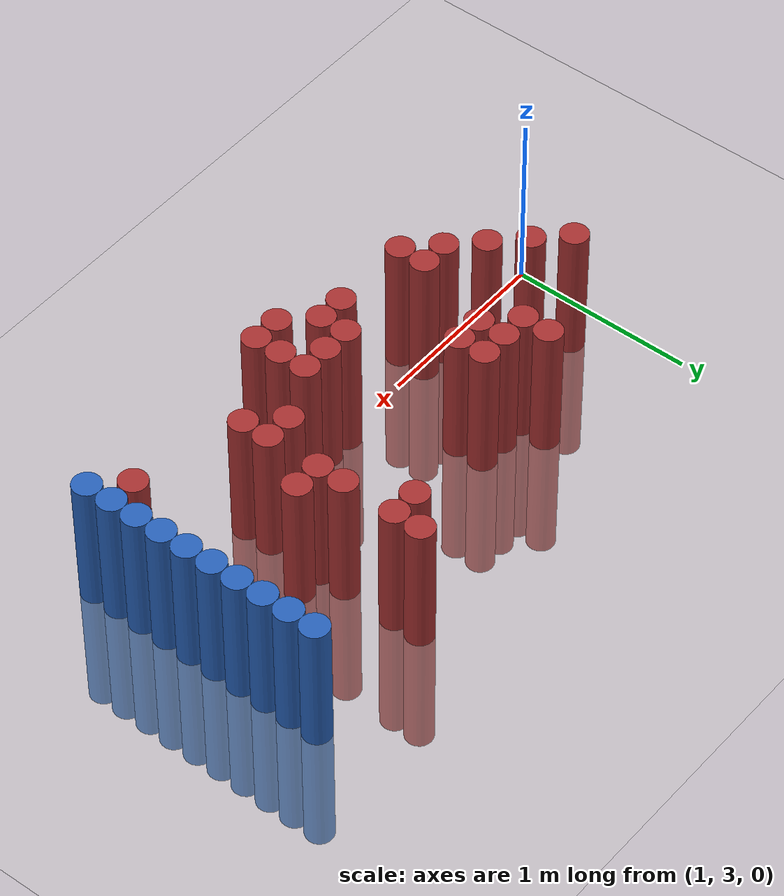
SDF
<sdf version="1.6">
 <world name="default">
  <model name="ground_plane">
   <static>1</static>
   <link name="link">
    <collision name="collision">
     <geometry><plane><normal>0 0 1</normal><size>100 100</size></plane></geometry>
     <surface><friction><ode><mu>100</mu><mu2>50</mu2></ode></friction></surface>
    </collision>
    <visual name="visual">
     <cast_shadows>0</cast_shadows>
     <geometry><plane><normal>0 0 1</normal><size>100 100</size></plane></geometry>
     <material>
      <script><uri>file://media/materials/scripts/gazebo.material</uri><name>Gazebo/Grey</name></script>
     </material>
    </visual>
   </link>
  </model>
  <model name="unit_cylinder_150">
   <static>1</static>
   <pose>3.925000 2.725000 0.000000 0.000000 0.000000 0.000000</pose>
   <link name="link">
    <inertial>
     <mass>1</mass>
     <inertia><ixx>0.145833</ixx><ixy>0</ixy><ixz>0</ixz><iyy>0.145833</iyy><iyz>0</iyz><izz>0.125</izz></inertia>
    </inertial>
    <collision name="collision">
     <geometry><cylinder><radius>0.075000</radius><length>1.5</length></cylinder></geometry>
    </collision>
    <visual name="visual">
     <geometry><cylinder><radius>0.075000</radius><length>1.5</length></cylinder></geometry>
     <material>
      <ambient>0.152000 0.379000 0.720000 1</ambient>
      <diffuse>0.152000 0.379000 0.720000 1</diffuse>
     </material>
     <material>
      <script><name>Gazebo/Grey</name><uri>file://media/materials/scripts/gazebo.material</uri></script>
     </material>
    </visual>
   </link>
  </model>
  <model name="unit_cylinder_152">
   <static>1</static>
   <pose>3.925000 2.875000 0.000000 0.000000 0.000000 0.000000</pose>
   <link name="link">
    <inertial>
     <mass>1</mass>
     <inertia><ixx>0.145833</ixx><ixy>0</ixy><ixz>0</ixz><iyy>0.145833</iyy><iyz>0</iyz><izz>0.125</izz></inertia>
    </inertial>
    <collision name="collision">
     <geometry><cylinder><radius>0.075000</radius><length>1.5</length></cylinder></geometry>
    </collision>
    <visual name="visual">
     <geometry><cylinder><radius>0.075000</radius><length>1.5</length></cylinder></geometry>
     <material>
      <ambient>0.152000 0.379000 0.720000 1</ambient>
      <diffuse>0.152000 0.379000 0.720000 1</diffuse>
     </material>
     <material>
      <script><name>Gazebo/Grey</name><uri>file://media/materials/scripts/gazebo.material</uri></script>
     </material>
    </visual>
   </link>
  </model>
  <model name="unit_cylinder_154">
   <static>1</static>
   <pose>3.925000 3.025000 0.000000 0.000000 0.000000 0.000000</pose>
   <link name="link">
    <inertial>
     <mass>1</mass>
     <inertia><ixx>0.145833</ixx><ixy>0</ixy><ixz>0</ixz><iyy>0.145833</iyy><iyz>0</iyz><izz>0.125</izz></inertia>
    </inertial>
    <collision name="collision">
     <geometry><cylinder><radius>0.075000</radius><length>1.5</length></cylinder></geometry>
    </collision>
    <visual name="visual">
     <geometry><cylinder><radius>0.075000</radius><length>1.5</length></cylinder></geometry>
     <material>
      <ambient>0.152000 0.379000 0.720000 1</ambient>
      <diffuse>0.152000 0.379000 0.720000 1</diffuse>
     </material>
     <material>
      <script><name>Gazebo/Grey</name><uri>file://media/materials/scripts/gazebo.material</uri></script>
     </material>
    </visual>
   </link>
  </model>
  <model name="unit_cylinder_156">
   <static>1</static>
   <pose>3.925000 3.175000 0.000000 0.000000 0.000000 0.000000</pose>
   <link name="link">
    <inertial>
     <mass>1</mass>
     <inertia><ixx>0.145833</ixx><ixy>0</ixy><ixz>0</ixz><iyy>0.145833</iyy><iyz>0</iyz><izz>0.125</izz></inertia>
    </inertial>
    <collision name="collision">
     <geometry><cylinder><radius>0.075000</radius><length>1.5</length></cylinder></geometry>
    </collision>
    <visual name="visual">
     <geometry><cylinder><radius>0.075000</radius><length>1.5</length></cylinder></geometry>
     <material>
      <ambient>0.152000 0.379000 0.720000 1</ambient>
      <diffuse>0.152000 0.379000 0.720000 1</diffuse>
     </material>
     <material>
      <script><name>Gazebo/Grey</name><uri>file://media/materials/scripts/gazebo.material</uri></script>
     </material>
    </visual>
   </link>
  </model>
  <model name="unit_cylinder_158">
   <static>1</static>
   <pose>3.925000 3.325000 0.000000 0.000000 0.000000 0.000000</pose>
   <link name="link">
    <inertial>
     <mass>1</mass>
     <inertia><ixx>0.145833</ixx><ixy>0</ixy><ixz>0</ixz><iyy>0.145833</iyy><iyz>0</iyz><izz>0.125</izz></inertia>
    </inertial>
    <collision name="collision">
     <geometry><cylinder><radius>0.075000</radius><length>1.5</length></cylinder></geometry>
    </collision>
    <visual name="visual">
     <geometry><cylinder><radius>0.075000</radius><length>1.5</length></cylinder></geometry>
     <material>
      <ambient>0.152000 0.379000 0.720000 1</ambient>
      <diffuse>0.152000 0.379000 0.720000 1</diffuse>
     </material>
     <material>
      <script><name>Gazebo/Grey</name><uri>file://media/materials/scripts/gazebo.material</uri></script>
     </material>
    </visual>
   </link>
  </model>
  <model name="unit_cylinder_160">
   <static>1</static>
   <pose>3.925000 3.475000 0.000000 0.000000 0.000000 0.000000</pose>
   <link name="link">
    <inertial>
     <mass>1</mass>
     <inertia><ixx>0.145833</ixx><ixy>0</ixy><ixz>0</ixz><iyy>0.145833</iyy><iyz>0</iyz><izz>0.125</izz></inertia>
    </inertial>
    <collision name="collision">
     <geometry><cylinder><radius>0.075000</radius><length>1.5</length></cylinder></geometry>
    </collision>
    <visual name="visual">
     <geometry><cylinder><radius>0.075000</radius><length>1.5</length></cylinder></geometry>
     <material>
      <ambient>0.152000 0.379000 0.720000 1</ambient>
      <diffuse>0.152000 0.379000 0.720000 1</diffuse>
     </material>
     <material>
      <script><name>Gazebo/Grey</name><uri>file://media/materials/scripts/gazebo.material</uri></script>
     </material>
    </visual>
   </link>
  </model>
  <model name="unit_cylinder_162">
   <static>1</static>
   <pose>3.925000 3.625000 0.000000 0.000000 0.000000 0.000000</pose>
   <link name="link">
    <inertial>
     <mass>1</mass>
     <inertia><ixx>0.145833</ixx><ixy>0</ixy><ixz>0</ixz><iyy>0.145833</iyy><iyz>0</iyz><izz>0.125</izz></inertia>
    </inertial>
    <collision name="collision">
     <geometry><cylinder><radius>0.075000</radius><length>1.5</length></cylinder></geometry>
    </collision>
    <visual name="visual">
     <geometry><cylinder><radius>0.075000</radius><length>1.5</length></cylinder></geometry>
     <material>
      <ambient>0.152000 0.379000 0.720000 1</ambient>
      <diffuse>0.152000 0.379000 0.720000 1</diffuse>
     </material>
     <material>
      <script><name>Gazebo/Grey</name><uri>file://media/materials/scripts/gazebo.material</uri></script>
     </material>
    </visual>
   </link>
  </model>
  <model name="unit_cylinder_164">
   <static>1</static>
   <pose>3.925000 3.775000 0.000000 0.000000 0.000000 0.000000</pose>
   <link name="link">
    <inertial>
     <mass>1</mass>
     <inertia><ixx>0.145833</ixx><ixy>0</ixy><ixz>0</ixz><iyy>0.145833</iyy><iyz>0</iyz><izz>0.125</izz></inertia>
    </inertial>
    <collision name="collision">
     <geometry><cylinder><radius>0.075000</radius><length>1.5</length></cylinder></geometry>
    </collision>
    <visual name="visual">
     <geometry><cylinder><radius>0.075000</radius><length>1.5</length></cylinder></geometry>
     <material>
      <ambient>0.152000 0.379000 0.720000 1</ambient>
      <diffuse>0.152000 0.379000 0.720000 1</diffuse>
     </material>
     <material>
      <script><name>Gazebo/Grey</name><uri>file://media/materials/scripts/gazebo.material</uri></script>
     </material>
    </visual>
   </link>
  </model>
  <model name="unit_cylinder_166">
   <static>1</static>
   <pose>3.925000 3.925000 0.000000 0.000000 0.000000 0.000000</pose>
   <link name="link">
    <inertial>
     <mass>1</mass>
     <inertia><ixx>0.145833</ixx><ixy>0</ixy><ixz>0</ixz><iyy>0.145833</iyy><iyz>0</iyz><izz>0.125</izz></inertia>
    </inertial>
    <collision name="collision">
     <geometry><cylinder><radius>0.075000</radius><length>1.5</length></cylinder></geometry>
    </collision>
    <visual name="visual">
     <geometry><cylinder><radius>0.075000</radius><length>1.5</length></cylinder></geometry>
     <material>
      <ambient>0.152000 0.379000 0.720000 1</ambient>
      <diffuse>0.152000 0.379000 0.720000 1</diffuse>
     </material>
     <material>
      <script><name>Gazebo/Grey</name><uri>file://media/materials/scripts/gazebo.material</uri></script>
     </material>
    </visual>
   </link>
  </model>
  <model name="unit_cylinder_168">
   <static>1</static>
   <pose>3.925000 4.075000 0.000000 0.000000 0.000000 0.000000</pose>
   <link name="link">
    <inertial>
     <mass>1</mass>
     <inertia><ixx>0.145833</ixx><ixy>0</ixy><ixz>0</ixz><iyy>0.145833</iyy><iyz>0</iyz><izz>0.125</izz></inertia>
    </inertial>
    <collision name="collision">
     <geometry><cylinder><radius>0.075000</radius><length>1.5</length></cylinder></geometry>
    </collision>
    <visual name="visual">
     <geometry><cylinder><radius>0.075000</radius><length>1.5</length></cylinder></geometry>
     <material>
      <ambient>0.152000 0.379000 0.720000 1</ambient>
      <diffuse>0.152000 0.379000 0.720000 1</diffuse>
     </material>
     <material>
      <script><name>Gazebo/Grey</name><uri>file://media/materials/scripts/gazebo.material</uri></script>
     </material>
    </visual>
   </link>
  </model>
  <model name="unit_cylinder_388">
   <static>1</static>
   <pose>1.225000 3.475000 0.000000 0.000000 0.000000 0.000000</pose>
   <link name="link">
    <inertial>
     <mass>1</mass>
     <inertia><ixx>0.145833</ixx><ixy>0</ixy><ixz>0</ixz><iyy>0.145833</iyy><iyz>0</iyz><izz>0.125</izz></inertia>
    </inertial>
    <collision name="collision">
     <geometry><cylinder><radius>0.075000</radius><length>1.5</length></cylinder></geometry>
    </collision>
    <visual name="visual">
     <geometry><cylinder><radius>0.075000</radius><length>1.5</length></cylinder></geometry>
     <material>
      <ambient>0.648000 0.192000 0.192000 1</ambient>
      <diffuse>0.648000 0.192000 0.192000 1</diffuse>
     </material>
     <material>
      <script><name>Gazebo/Grey</name><uri>file://media/materials/scripts/gazebo.material</uri></script>
     </material>
    </visual>
   </link>
  </model>
  <model name="unit_cylinder_395">
   <static>1</static>
   <pose>1.375000 3.325000 0.000000 0.000000 0.000000 0.000000</pose>
   <link name="link">
    <inertial>
     <mass>1</mass>
     <inertia><ixx>0.145833</ixx><ixy>0</ixy><ixz>0</ixz><iyy>0.145833</iyy><iyz>0</iyz><izz>0.125</izz></inertia>
    </inertial>
    <collision name="collision">
     <geometry><cylinder><radius>0.075000</radius><length>1.5</length></cylinder></geometry>
    </collision>
    <visual name="visual">
     <geometry><cylinder><radius>0.075000</radius><length>1.5</length></cylinder></geometry>
     <material>
      <ambient>0.648000 0.192000 0.192000 1</ambient>
      <diffuse>0.648000 0.192000 0.192000 1</diffuse>
     </material>
     <material>
      <script><name>Gazebo/Grey</name><uri>file://media/materials/scripts/gazebo.material</uri></script>
     </material>
    </visual>
   </link>
  </model>
  <model name="unit_cylinder_400">
   <static>1</static>
   <pose>1.525000 3.175000 0.000000 0.000000 0.000000 0.000000</pose>
   <link name="link">
    <inertial>
     <mass>1</mass>
     <inertia><ixx>0.145833</ixx><ixy>0</ixy><ixz>0</ixz><iyy>0.145833</iyy><iyz>0</iyz><izz>0.125</izz></inertia>
    </inertial>
    <collision name="collision">
     <geometry><cylinder><radius>0.075000</radius><length>1.5</length></cylinder></geometry>
    </collision>
    <visual name="visual">
     <geometry><cylinder><radius>0.075000</radius><length>1.5</length></cylinder></geometry>
     <material>
      <ambient>0.648000 0.192000 0.192000 1</ambient>
      <diffuse>0.648000 0.192000 0.192000 1</diffuse>
     </material>
     <material>
      <script><name>Gazebo/Grey</name><uri>file://media/materials/scripts/gazebo.material</uri></script>
     </material>
    </visual>
   </link>
  </model>
  <model name="unit_cylinder_406">
   <static>1</static>
   <pose>1.675000 3.025000 0.000000 0.000000 0.000000 0.000000</pose>
   <link name="link">
    <inertial>
     <mass>1</mass>
     <inertia><ixx>0.145833</ixx><ixy>0</ixy><ixz>0</ixz><iyy>0.145833</iyy><iyz>0</iyz><izz>0.125</izz></inertia>
    </inertial>
    <collision name="collision">
     <geometry><cylinder><radius>0.075000</radius><length>1.5</length></cylinder></geometry>
    </collision>
    <visual name="visual">
     <geometry><cylinder><radius>0.075000</radius><length>1.5</length></cylinder></geometry>
     <material>
      <ambient>0.648000 0.192000 0.192000 1</ambient>
      <diffuse>0.648000 0.192000 0.192000 1</diffuse>
     </material>
     <material>
      <script><name>Gazebo/Grey</name><uri>file://media/materials/scripts/gazebo.material</uri></script>
     </material>
    </visual>
   </link>
  </model>
  <model name="unit_cylinder_410">
   <static>1</static>
   <pose>1.825000 2.875000 0.000000 0.000000 0.000000 0.000000</pose>
   <link name="link">
    <inertial>
     <mass>1</mass>
     <inertia><ixx>0.145833</ixx><ixy>0</ixy><ixz>0</ixz><iyy>0.145833</iyy><iyz>0</iyz><izz>0.125</izz></inertia>
    </inertial>
    <collision name="collision">
     <geometry><cylinder><radius>0.075000</radius><length>1.5</length></cylinder></geometry>
    </collision>
    <visual name="visual">
     <geometry><cylinder><radius>0.075000</radius><length>1.5</length></cylinder></geometry>
     <material>
      <ambient>0.648000 0.192000 0.192000 1</ambient>
      <diffuse>0.648000 0.192000 0.192000 1</diffuse>
     </material>
     <material>
      <script><name>Gazebo/Grey</name><uri>file://media/materials/scripts/gazebo.material</uri></script>
     </material>
    </visual>
   </link>
  </model>
  <model name="unit_cylinder_411">
   <static>1</static>
   <pose>1.825000 3.025000 0.000000 0.000000 0.000000 0.000000</pose>
   <link name="link">
    <inertial>
     <mass>1</mass>
     <inertia><ixx>0.145833</ixx><ixy>0</ixy><ixz>0</ixz><iyy>0.145833</iyy><iyz>0</iyz><izz>0.125</izz></inertia>
    </inertial>
    <collision name="collision">
     <geometry><cylinder><radius>0.075000</radius><length>1.5</length></cylinder></geometry>
    </collision>
    <visual name="visual">
     <geometry><cylinder><radius>0.075000</radius><length>1.5</length></cylinder></geometry>
     <material>
      <ambient>0.648000 0.192000 0.192000 1</ambient>
      <diffuse>0.648000 0.192000 0.192000 1</diffuse>
     </material>
     <material>
      <script><name>Gazebo/Grey</name><uri>file://media/materials/scripts/gazebo.material</uri></script>
     </material>
    </visual>
   </link>
  </model>
  <model name="unit_cylinder_412">
   <static>1</static>
   <pose>1.825000 3.625000 0.000000 0.000000 0.000000 0.000000</pose>
   <link name="link">
    <inertial>
     <mass>1</mass>
     <inertia><ixx>0.145833</ixx><ixy>0</ixy><ixz>0</ixz><iyy>0.145833</iyy><iyz>0</iyz><izz>0.125</izz></inertia>
    </inertial>
    <collision name="collision">
     <geometry><cylinder><radius>0.075000</radius><length>1.5</length></cylinder></geometry>
    </collision>
    <visual name="visual">
     <geometry><cylinder><radius>0.075000</radius><length>1.5</length></cylinder></geometry>
     <material>
      <ambient>0.648000 0.192000 0.192000 1</ambient>
      <diffuse>0.648000 0.192000 0.192000 1</diffuse>
     </material>
     <material>
      <script><name>Gazebo/Grey</name><uri>file://media/materials/scripts/gazebo.material</uri></script>
     </material>
    </visual>
   </link>
  </model>
  <model name="unit_cylinder_413">
   <static>1</static>
   <pose>1.825000 3.775000 0.000000 0.000000 0.000000 0.000000</pose>
   <link name="link">
    <inertial>
     <mass>1</mass>
     <inertia><ixx>0.145833</ixx><ixy>0</ixy><ixz>0</ixz><iyy>0.145833</iyy><iyz>0</iyz><izz>0.125</izz></inertia>
    </inertial>
    <collision name="collision">
     <geometry><cylinder><radius>0.075000</radius><length>1.5</length></cylinder></geometry>
    </collision>
    <visual name="visual">
     <geometry><cylinder><radius>0.075000</radius><length>1.5</length></cylinder></geometry>
     <material>
      <ambient>0.648000 0.192000 0.192000 1</ambient>
      <diffuse>0.648000 0.192000 0.192000 1</diffuse>
     </material>
     <material>
      <script><name>Gazebo/Grey</name><uri>file://media/materials/scripts/gazebo.material</uri></script>
     </material>
    </visual>
   </link>
  </model>
  <model name="unit_cylinder_414">
   <static>1</static>
   <pose>1.975000 3.475000 0.000000 0.000000 0.000000 0.000000</pose>
   <link name="link">
    <inertial>
     <mass>1</mass>
     <inertia><ixx>0.145833</ixx><ixy>0</ixy><ixz>0</ixz><iyy>0.145833</iyy><iyz>0</iyz><izz>0.125</izz></inertia>
    </inertial>
    <collision name="collision">
     <geometry><cylinder><radius>0.075000</radius><length>1.5</length></cylinder></geometry>
    </collision>
    <visual name="visual">
     <geometry><cylinder><radius>0.075000</radius><length>1.5</length></cylinder></geometry>
     <material>
      <ambient>0.648000 0.192000 0.192000 1</ambient>
      <diffuse>0.648000 0.192000 0.192000 1</diffuse>
     </material>
     <material>
      <script><name>Gazebo/Grey</name><uri>file://media/materials/scripts/gazebo.material</uri></script>
     </material>
    </visual>
   </link>
  </model>
  <model name="unit_cylinder_415">
   <static>1</static>
   <pose>1.975000 3.625000 0.000000 0.000000 0.000000 0.000000</pose>
   <link name="link">
    <inertial>
     <mass>1</mass>
     <inertia><ixx>0.145833</ixx><ixy>0</ixy><ixz>0</ixz><iyy>0.145833</iyy><iyz>0</iyz><izz>0.125</izz></inertia>
    </inertial>
    <collision name="collision">
     <geometry><cylinder><radius>0.075000</radius><length>1.5</length></cylinder></geometry>
    </collision>
    <visual name="visual">
     <geometry><cylinder><radius>0.075000</radius><length>1.5</length></cylinder></geometry>
     <material>
      <ambient>0.648000 0.192000 0.192000 1</ambient>
      <diffuse>0.648000 0.192000 0.192000 1</diffuse>
     </material>
     <material>
      <script><name>Gazebo/Grey</name><uri>file://media/materials/scripts/gazebo.material</uri></script>
     </material>
    </visual>
   </link>
  </model>
  <model name="unit_cylinder_419">
   <static>1</static>
   <pose>2.125000 3.475000 0.000000 0.000000 0.000000 0.000000</pose>
   <link name="link">
    <inertial>
     <mass>1</mass>
     <inertia><ixx>0.145833</ixx><ixy>0</ixy><ixz>0</ixz><iyy>0.145833</iyy><iyz>0</iyz><izz>0.125</izz></inertia>
    </inertial>
    <collision name="collision">
     <geometry><cylinder><radius>0.075000</radius><length>1.5</length></cylinder></geometry>
    </collision>
    <visual name="visual">
     <geometry><cylinder><radius>0.075000</radius><length>1.5</length></cylinder></geometry>
     <material>
      <ambient>0.648000 0.192000 0.192000 1</ambient>
      <diffuse>0.648000 0.192000 0.192000 1</diffuse>
     </material>
     <material>
      <script><name>Gazebo/Grey</name><uri>file://media/materials/scripts/gazebo.material</uri></script>
     </material>
    </visual>
   </link>
  </model>
  <model name="unit_cylinder_420">
   <static>1</static>
   <pose>2.125000 3.625000 0.000000 0.000000 0.000000 0.000000</pose>
   <link name="link">
    <inertial>
     <mass>1</mass>
     <inertia><ixx>0.145833</ixx><ixy>0</ixy><ixz>0</ixz><iyy>0.145833</iyy><iyz>0</iyz><izz>0.125</izz></inertia>
    </inertial>
    <collision name="collision">
     <geometry><cylinder><radius>0.075000</radius><length>1.5</length></cylinder></geometry>
    </collision>
    <visual name="visual">
     <geometry><cylinder><radius>0.075000</radius><length>1.5</length></cylinder></geometry>
     <material>
      <ambient>0.648000 0.192000 0.192000 1</ambient>
      <diffuse>0.648000 0.192000 0.192000 1</diffuse>
     </material>
     <material>
      <script><name>Gazebo/Grey</name><uri>file://media/materials/scripts/gazebo.material</uri></script>
     </material>
    </visual>
   </link>
  </model>
  <model name="unit_cylinder_424">
   <static>1</static>
   <pose>2.275000 2.875000 0.000000 0.000000 0.000000 0.000000</pose>
   <link name="link">
    <inertial>
     <mass>1</mass>
     <inertia><ixx>0.145833</ixx><ixy>0</ixy><ixz>0</ixz><iyy>0.145833</iyy><iyz>0</iyz><izz>0.125</izz></inertia>
    </inertial>
    <collision name="collision">
     <geometry><cylinder><radius>0.075000</radius><length>1.5</length></cylinder></geometry>
    </collision>
    <visual name="visual">
     <geometry><cylinder><radius>0.075000</radius><length>1.5</length></cylinder></geometry>
     <material>
      <ambient>0.648000 0.192000 0.192000 1</ambient>
      <diffuse>0.648000 0.192000 0.192000 1</diffuse>
     </material>
     <material>
      <script><name>Gazebo/Grey</name><uri>file://media/materials/scripts/gazebo.material</uri></script>
     </material>
    </visual>
   </link>
  </model>
  <model name="unit_cylinder_427">
   <static>1</static>
   <pose>2.425000 2.875000 0.000000 0.000000 0.000000 0.000000</pose>
   <link name="link">
    <inertial>
     <mass>1</mass>
     <inertia><ixx>0.145833</ixx><ixy>0</ixy><ixz>0</ixz><iyy>0.145833</iyy><iyz>0</iyz><izz>0.125</izz></inertia>
    </inertial>
    <collision name="collision">
     <geometry><cylinder><radius>0.075000</radius><length>1.5</length></cylinder></geometry>
    </collision>
    <visual name="visual">
     <geometry><cylinder><radius>0.075000</radius><length>1.5</length></cylinder></geometry>
     <material>
      <ambient>0.648000 0.192000 0.192000 1</ambient>
      <diffuse>0.648000 0.192000 0.192000 1</diffuse>
     </material>
     <material>
      <script><name>Gazebo/Grey</name><uri>file://media/materials/scripts/gazebo.material</uri></script>
     </material>
    </visual>
   </link>
  </model>
  <model name="unit_cylinder_428">
   <static>1</static>
   <pose>2.425000 3.025000 0.000000 0.000000 0.000000 0.000000</pose>
   <link name="link">
    <inertial>
     <mass>1</mass>
     <inertia><ixx>0.145833</ixx><ixy>0</ixy><ixz>0</ixz><iyy>0.145833</iyy><iyz>0</iyz><izz>0.125</izz></inertia>
    </inertial>
    <collision name="collision">
     <geometry><cylinder><radius>0.075000</radius><length>1.5</length></cylinder></geometry>
    </collision>
    <visual name="visual">
     <geometry><cylinder><radius>0.075000</radius><length>1.5</length></cylinder></geometry>
     <material>
      <ambient>0.648000 0.192000 0.192000 1</ambient>
      <diffuse>0.648000 0.192000 0.192000 1</diffuse>
     </material>
     <material>
      <script><name>Gazebo/Grey</name><uri>file://media/materials/scripts/gazebo.material</uri></script>
     </material>
    </visual>
   </link>
  </model>
  <model name="unit_cylinder_432">
   <static>1</static>
   <pose>2.575000 2.725000 0.000000 0.000000 0.000000 0.000000</pose>
   <link name="link">
    <inertial>
     <mass>1</mass>
     <inertia><ixx>0.145833</ixx><ixy>0</ixy><ixz>0</ixz><iyy>0.145833</iyy><iyz>0</iyz><izz>0.125</izz></inertia>
    </inertial>
    <collision name="collision">
     <geometry><cylinder><radius>0.075000</radius><length>1.5</length></cylinder></geometry>
    </collision>
    <visual name="visual">
     <geometry><cylinder><radius>0.075000</radius><length>1.5</length></cylinder></geometry>
     <material>
      <ambient>0.648000 0.192000 0.192000 1</ambient>
      <diffuse>0.648000 0.192000 0.192000 1</diffuse>
     </material>
     <material>
      <script><name>Gazebo/Grey</name><uri>file://media/materials/scripts/gazebo.material</uri></script>
     </material>
    </visual>
   </link>
  </model>
  <model name="unit_cylinder_433">
   <static>1</static>
   <pose>2.575000 3.025000 0.000000 0.000000 0.000000 0.000000</pose>
   <link name="link">
    <inertial>
     <mass>1</mass>
     <inertia><ixx>0.145833</ixx><ixy>0</ixy><ixz>0</ixz><iyy>0.145833</iyy><iyz>0</iyz><izz>0.125</izz></inertia>
    </inertial>
    <collision name="collision">
     <geometry><cylinder><radius>0.075000</radius><length>1.5</length></cylinder></geometry>
    </collision>
    <visual name="visual">
     <geometry><cylinder><radius>0.075000</radius><length>1.5</length></cylinder></geometry>
     <material>
      <ambient>0.648000 0.192000 0.192000 1</ambient>
      <diffuse>0.648000 0.192000 0.192000 1</diffuse>
     </material>
     <material>
      <script><name>Gazebo/Grey</name><uri>file://media/materials/scripts/gazebo.material</uri></script>
     </material>
    </visual>
   </link>
  </model>
  <model name="unit_cylinder_437">
   <static>1</static>
   <pose>2.725000 2.725000 0.000000 0.000000 0.000000 0.000000</pose>
   <link name="link">
    <inertial>
     <mass>1</mass>
     <inertia><ixx>0.145833</ixx><ixy>0</ixy><ixz>0</ixz><iyy>0.145833</iyy><iyz>0</iyz><izz>0.125</izz></inertia>
    </inertial>
    <collision name="collision">
     <geometry><cylinder><radius>0.075000</radius><length>1.5</length></cylinder></geometry>
    </collision>
    <visual name="visual">
     <geometry><cylinder><radius>0.075000</radius><length>1.5</length></cylinder></geometry>
     <material>
      <ambient>0.648000 0.192000 0.192000 1</ambient>
      <diffuse>0.648000 0.192000 0.192000 1</diffuse>
     </material>
     <material>
      <script><name>Gazebo/Grey</name><uri>file://media/materials/scripts/gazebo.material</uri></script>
     </material>
    </visual>
   </link>
  </model>
  <model name="unit_cylinder_438">
   <static>1</static>
   <pose>2.725000 2.875000 0.000000 0.000000 0.000000 0.000000</pose>
   <link name="link">
    <inertial>
     <mass>1</mass>
     <inertia><ixx>0.145833</ixx><ixy>0</ixy><ixz>0</ixz><iyy>0.145833</iyy><iyz>0</iyz><izz>0.125</izz></inertia>
    </inertial>
    <collision name="collision">
     <geometry><cylinder><radius>0.075000</radius><length>1.5</length></cylinder></geometry>
    </collision>
    <visual name="visual">
     <geometry><cylinder><radius>0.075000</radius><length>1.5</length></cylinder></geometry>
     <material>
      <ambient>0.648000 0.192000 0.192000 1</ambient>
      <diffuse>0.648000 0.192000 0.192000 1</diffuse>
     </material>
     <material>
      <script><name>Gazebo/Grey</name><uri>file://media/materials/scripts/gazebo.material</uri></script>
     </material>
    </visual>
   </link>
  </model>
  <model name="unit_cylinder_439">
   <static>1</static>
   <pose>2.725000 3.025000 0.000000 0.000000 0.000000 0.000000</pose>
   <link name="link">
    <inertial>
     <mass>1</mass>
     <inertia><ixx>0.145833</ixx><ixy>0</ixy><ixz>0</ixz><iyy>0.145833</iyy><iyz>0</iyz><izz>0.125</izz></inertia>
    </inertial>
    <collision name="collision">
     <geometry><cylinder><radius>0.075000</radius><length>1.5</length></cylinder></geometry>
    </collision>
    <visual name="visual">
     <geometry><cylinder><radius>0.075000</radius><length>1.5</length></cylinder></geometry>
     <material>
      <ambient>0.648000 0.192000 0.192000 1</ambient>
      <diffuse>0.648000 0.192000 0.192000 1</diffuse>
     </material>
     <material>
      <script><name>Gazebo/Grey</name><uri>file://media/materials/scripts/gazebo.material</uri></script>
     </material>
    </visual>
   </link>
  </model>
  <model name="unit_cylinder_444">
   <static>1</static>
   <pose>3.025000 3.175000 0.000000 0.000000 0.000000 0.000000</pose>
   <link name="link">
    <inertial>
     <mass>1</mass>
     <inertia><ixx>0.145833</ixx><ixy>0</ixy><ixz>0</ixz><iyy>0.145833</iyy><iyz>0</iyz><izz>0.125</izz></inertia>
    </inertial>
    <collision name="collision">
     <geometry><cylinder><radius>0.075000</radius><length>1.5</length></cylinder></geometry>
    </collision>
    <visual name="visual">
     <geometry><cylinder><radius>0.075000</radius><length>1.5</length></cylinder></geometry>
     <material>
      <ambient>0.648000 0.192000 0.192000 1</ambient>
      <diffuse>0.648000 0.192000 0.192000 1</diffuse>
     </material>
     <material>
      <script><name>Gazebo/Grey</name><uri>file://media/materials/scripts/gazebo.material</uri></script>
     </material>
    </visual>
   </link>
  </model>
  <model name="unit_cylinder_445">
   <static>1</static>
   <pose>3.025000 3.925000 0.000000 0.000000 0.000000 0.000000</pose>
   <link name="link">
    <inertial>
     <mass>1</mass>
     <inertia><ixx>0.145833</ixx><ixy>0</ixy><ixz>0</ixz><iyy>0.145833</iyy><iyz>0</iyz><izz>0.125</izz></inertia>
    </inertial>
    <collision name="collision">
     <geometry><cylinder><radius>0.075000</radius><length>1.5</length></cylinder></geometry>
    </collision>
    <visual name="visual">
     <geometry><cylinder><radius>0.075000</radius><length>1.5</length></cylinder></geometry>
     <material>
      <ambient>0.648000 0.192000 0.192000 1</ambient>
      <diffuse>0.648000 0.192000 0.192000 1</diffuse>
     </material>
     <material>
      <script><name>Gazebo/Grey</name><uri>file://media/materials/scripts/gazebo.material</uri></script>
     </material>
    </visual>
   </link>
  </model>
  <model name="unit_cylinder_449">
   <static>1</static>
   <pose>3.175000 3.025000 0.000000 0.000000 0.000000 0.000000</pose>
   <link name="link">
    <inertial>
     <mass>1</mass>
     <inertia><ixx>0.145833</ixx><ixy>0</ixy><ixz>0</ixz><iyy>0.145833</iyy><iyz>0</iyz><izz>0.125</izz></inertia>
    </inertial>
    <collision name="collision">
     <geometry><cylinder><radius>0.075000</radius><length>1.5</length></cylinder></geometry>
    </collision>
    <visual name="visual">
     <geometry><cylinder><radius>0.075000</radius><length>1.5</length></cylinder></geometry>
     <material>
      <ambient>0.648000 0.192000 0.192000 1</ambient>
      <diffuse>0.648000 0.192000 0.192000 1</diffuse>
     </material>
     <material>
      <script><name>Gazebo/Grey</name><uri>file://media/materials/scripts/gazebo.material</uri></script>
     </material>
    </visual>
   </link>
  </model>
  <model name="unit_cylinder_450">
   <static>1</static>
   <pose>3.175000 3.175000 0.000000 0.000000 0.000000 0.000000</pose>
   <link name="link">
    <inertial>
     <mass>1</mass>
     <inertia><ixx>0.145833</ixx><ixy>0</ixy><ixz>0</ixz><iyy>0.145833</iyy><iyz>0</iyz><izz>0.125</izz></inertia>
    </inertial>
    <collision name="collision">
     <geometry><cylinder><radius>0.075000</radius><length>1.5</length></cylinder></geometry>
    </collision>
    <visual name="visual">
     <geometry><cylinder><radius>0.075000</radius><length>1.5</length></cylinder></geometry>
     <material>
      <ambient>0.648000 0.192000 0.192000 1</ambient>
      <diffuse>0.648000 0.192000 0.192000 1</diffuse>
     </material>
     <material>
      <script><name>Gazebo/Grey</name><uri>file://media/materials/scripts/gazebo.material</uri></script>
     </material>
    </visual>
   </link>
  </model>
  <model name="unit_cylinder_451">
   <static>1</static>
   <pose>3.175000 3.475000 0.000000 0.000000 0.000000 0.000000</pose>
   <link name="link">
    <inertial>
     <mass>1</mass>
     <inertia><ixx>0.145833</ixx><ixy>0</ixy><ixz>0</ixz><iyy>0.145833</iyy><iyz>0</iyz><izz>0.125</izz></inertia>
    </inertial>
    <collision name="collision">
     <geometry><cylinder><radius>0.075000</radius><length>1.5</length></cylinder></geometry>
    </collision>
    <visual name="visual">
     <geometry><cylinder><radius>0.075000</radius><length>1.5</length></cylinder></geometry>
     <material>
      <ambient>0.648000 0.192000 0.192000 1</ambient>
      <diffuse>0.648000 0.192000 0.192000 1</diffuse>
     </material>
     <material>
      <script><name>Gazebo/Grey</name><uri>file://media/materials/scripts/gazebo.material</uri></script>
     </material>
    </visual>
   </link>
  </model>
  <model name="unit_cylinder_452">
   <static>1</static>
   <pose>3.175000 3.625000 0.000000 0.000000 0.000000 0.000000</pose>
   <link name="link">
    <inertial>
     <mass>1</mass>
     <inertia><ixx>0.145833</ixx><ixy>0</ixy><ixz>0</ixz><iyy>0.145833</iyy><iyz>0</iyz><izz>0.125</izz></inertia>
    </inertial>
    <collision name="collision">
     <geometry><cylinder><radius>0.075000</radius><length>1.5</length></cylinder></geometry>
    </collision>
    <visual name="visual">
     <geometry><cylinder><radius>0.075000</radius><length>1.5</length></cylinder></geometry>
     <material>
      <ambient>0.648000 0.192000 0.192000 1</ambient>
      <diffuse>0.648000 0.192000 0.192000 1</diffuse>
     </material>
     <material>
      <script><name>Gazebo/Grey</name><uri>file://media/materials/scripts/gazebo.material</uri></script>
     </material>
    </visual>
   </link>
  </model>
  <model name="unit_cylinder_453">
   <static>1</static>
   <pose>3.175000 3.925000 0.000000 0.000000 0.000000 0.000000</pose>
   <link name="link">
    <inertial>
     <mass>1</mass>
     <inertia><ixx>0.145833</ixx><ixy>0</ixy><ixz>0</ixz><iyy>0.145833</iyy><iyz>0</iyz><izz>0.125</izz></inertia>
    </inertial>
    <collision name="collision">
     <geometry><cylinder><radius>0.075000</radius><length>1.5</length></cylinder></geometry>
    </collision>
    <visual name="visual">
     <geometry><cylinder><radius>0.075000</radius><length>1.5</length></cylinder></geometry>
     <material>
      <ambient>0.648000 0.192000 0.192000 1</ambient>
      <diffuse>0.648000 0.192000 0.192000 1</diffuse>
     </material>
     <material>
      <script><name>Gazebo/Grey</name><uri>file://media/materials/scripts/gazebo.material</uri></script>
     </material>
    </visual>
   </link>
  </model>
  <model name="unit_cylinder_454">
   <static>1</static>
   <pose>3.175000 4.075000 0.000000 0.000000 0.000000 0.000000</pose>
   <link name="link">
    <inertial>
     <mass>1</mass>
     <inertia><ixx>0.145833</ixx><ixy>0</ixy><ixz>0</ixz><iyy>0.145833</iyy><iyz>0</iyz><izz>0.125</izz></inertia>
    </inertial>
    <collision name="collision">
     <geometry><cylinder><radius>0.075000</radius><length>1.5</length></cylinder></geometry>
    </collision>
    <visual name="visual">
     <geometry><cylinder><radius>0.075000</radius><length>1.5</length></cylinder></geometry>
     <material>
      <ambient>0.648000 0.192000 0.192000 1</ambient>
      <diffuse>0.648000 0.192000 0.192000 1</diffuse>
     </material>
     <material>
      <script><name>Gazebo/Grey</name><uri>file://media/materials/scripts/gazebo.material</uri></script>
     </material>
    </visual>
   </link>
  </model>
  <model name="unit_cylinder_458">
   <static>1</static>
   <pose>3.325000 3.475000 0.000000 0.000000 0.000000 0.000000</pose>
   <link name="link">
    <inertial>
     <mass>1</mass>
     <inertia><ixx>0.145833</ixx><ixy>0</ixy><ixz>0</ixz><iyy>0.145833</iyy><iyz>0</iyz><izz>0.125</izz></inertia>
    </inertial>
    <collision name="collision">
     <geometry><cylinder><radius>0.075000</radius><length>1.5</length></cylinder></geometry>
    </collision>
    <visual name="visual">
     <geometry><cylinder><radius>0.075000</radius><length>1.5</length></cylinder></geometry>
     <material>
      <ambient>0.648000 0.192000 0.192000 1</ambient>
      <diffuse>0.648000 0.192000 0.192000 1</diffuse>
     </material>
     <material>
      <script><name>Gazebo/Grey</name><uri>file://media/materials/scripts/gazebo.material</uri></script>
     </material>
    </visual>
   </link>
  </model>
  <model name="unit_cylinder_491">
   <static>1</static>
   <pose>3.775000 2.875000 0.000000 0.000000 0.000000 0.000000</pose>
   <link name="link">
    <inertial>
     <mass>1</mass>
     <inertia><ixx>0.145833</ixx><ixy>0</ixy><ixz>0</ixz><iyy>0.145833</iyy><iyz>0</iyz><izz>0.125</izz></inertia>
    </inertial>
    <collision name="collision">
     <geometry><cylinder><radius>0.075000</radius><length>1.5</length></cylinder></geometry>
    </collision>
    <visual name="visual">
     <geometry><cylinder><radius>0.075000</radius><length>1.5</length></cylinder></geometry>
     <material>
      <ambient>0.648000 0.192000 0.192000 1</ambient>
      <diffuse>0.648000 0.192000 0.192000 1</diffuse>
     </material>
     <material>
      <script><name>Gazebo/Grey</name><uri>file://media/materials/scripts/gazebo.material</uri></script>
     </material>
    </visual>
   </link>
  </model>
  <model name="unit_cylinder_527">
   <static>1</static>
   <pose>3.925000 2.725000 0.000000 0.000000 0.000000 0.000000</pose>
   <link name="link">
    <inertial>
     <mass>1</mass>
     <inertia><ixx>0.145833</ixx><ixy>0</ixy><ixz>0</ixz><iyy>0.145833</iyy><iyz>0</iyz><izz>0.125</izz></inertia>
    </inertial>
    <collision name="collision">
     <geometry><cylinder><radius>0.075000</radius><length>1.5</length></cylinder></geometry>
    </collision>
    <visual name="visual">
     <geometry><cylinder><radius>0.075000</radius><length>1.5</length></cylinder></geometry>
     <material>
      <ambient>0.152000 0.379000 0.720000 1</ambient>
      <diffuse>0.152000 0.379000 0.720000 1</diffuse>
     </material>
     <material>
      <script><name>Gazebo/Grey</name><uri>file://media/materials/scripts/gazebo.material</uri></script>
     </material>
    </visual>
   </link>
  </model>
  <model name="unit_cylinder_528">
   <static>1</static>
   <pose>3.925000 2.875000 0.000000 0.000000 0.000000 0.000000</pose>
   <link name="link">
    <inertial>
     <mass>1</mass>
     <inertia><ixx>0.145833</ixx><ixy>0</ixy><ixz>0</ixz><iyy>0.145833</iyy><iyz>0</iyz><izz>0.125</izz></inertia>
    </inertial>
    <collision name="collision">
     <geometry><cylinder><radius>0.075000</radius><length>1.5</length></cylinder></geometry>
    </collision>
    <visual name="visual">
     <geometry><cylinder><radius>0.075000</radius><length>1.5</length></cylinder></geometry>
     <material>
      <ambient>0.152000 0.379000 0.720000 1</ambient>
      <diffuse>0.152000 0.379000 0.720000 1</diffuse>
     </material>
     <material>
      <script><name>Gazebo/Grey</name><uri>file://media/materials/scripts/gazebo.material</uri></script>
     </material>
    </visual>
   </link>
  </model>
  <model name="unit_cylinder_529">
   <static>1</static>
   <pose>3.925000 3.025000 0.000000 0.000000 0.000000 0.000000</pose>
   <link name="link">
    <inertial>
     <mass>1</mass>
     <inertia><ixx>0.145833</ixx><ixy>0</ixy><ixz>0</ixz><iyy>0.145833</iyy><iyz>0</iyz><izz>0.125</izz></inertia>
    </inertial>
    <collision name="collision">
     <geometry><cylinder><radius>0.075000</radius><length>1.5</length></cylinder></geometry>
    </collision>
    <visual name="visual">
     <geometry><cylinder><radius>0.075000</radius><length>1.5</length></cylinder></geometry>
     <material>
      <ambient>0.152000 0.379000 0.720000 1</ambient>
      <diffuse>0.152000 0.379000 0.720000 1</diffuse>
     </material>
     <material>
      <script><name>Gazebo/Grey</name><uri>file://media/materials/scripts/gazebo.material</uri></script>
     </material>
    </visual>
   </link>
  </model>
  <model name="unit_cylinder_530">
   <static>1</static>
   <pose>3.925000 3.175000 0.000000 0.000000 0.000000 0.000000</pose>
   <link name="link">
    <inertial>
     <mass>1</mass>
     <inertia><ixx>0.145833</ixx><ixy>0</ixy><ixz>0</ixz><iyy>0.145833</iyy><iyz>0</iyz><izz>0.125</izz></inertia>
    </inertial>
    <collision name="collision">
     <geometry><cylinder><radius>0.075000</radius><length>1.5</length></cylinder></geometry>
    </collision>
    <visual name="visual">
     <geometry><cylinder><radius>0.075000</radius><length>1.5</length></cylinder></geometry>
     <material>
      <ambient>0.152000 0.379000 0.720000 1</ambient>
      <diffuse>0.152000 0.379000 0.720000 1</diffuse>
     </material>
     <material>
      <script><name>Gazebo/Grey</name><uri>file://media/materials/scripts/gazebo.material</uri></script>
     </material>
    </visual>
   </link>
  </model>
  <model name="unit_cylinder_531">
   <static>1</static>
   <pose>3.925000 3.325000 0.000000 0.000000 0.000000 0.000000</pose>
   <link name="link">
    <inertial>
     <mass>1</mass>
     <inertia><ixx>0.145833</ixx><ixy>0</ixy><ixz>0</ixz><iyy>0.145833</iyy><iyz>0</iyz><izz>0.125</izz></inertia>
    </inertial>
    <collision name="collision">
     <geometry><cylinder><radius>0.075000</radius><length>1.5</length></cylinder></geometry>
    </collision>
    <visual name="visual">
     <geometry><cylinder><radius>0.075000</radius><length>1.5</length></cylinder></geometry>
     <material>
      <ambient>0.152000 0.379000 0.720000 1</ambient>
      <diffuse>0.152000 0.379000 0.720000 1</diffuse>
     </material>
     <material>
      <script><name>Gazebo/Grey</name><uri>file://media/materials/scripts/gazebo.material</uri></script>
     </material>
    </visual>
   </link>
  </model>
  <model name="unit_cylinder_532">
   <static>1</static>
   <pose>3.925000 3.475000 0.000000 0.000000 0.000000 0.000000</pose>
   <link name="link">
    <inertial>
     <mass>1</mass>
     <inertia><ixx>0.145833</ixx><ixy>0</ixy><ixz>0</ixz><iyy>0.145833</iyy><iyz>0</iyz><izz>0.125</izz></inertia>
    </inertial>
    <collision name="collision">
     <geometry><cylinder><radius>0.075000</radius><length>1.5</length></cylinder></geometry>
    </collision>
    <visual name="visual">
     <geometry><cylinder><radius>0.075000</radius><length>1.5</length></cylinder></geometry>
     <material>
      <ambient>0.152000 0.379000 0.720000 1</ambient>
      <diffuse>0.152000 0.379000 0.720000 1</diffuse>
     </material>
     <material>
      <script><name>Gazebo/Grey</name><uri>file://media/materials/scripts/gazebo.material</uri></script>
     </material>
    </visual>
   </link>
  </model>
  <model name="unit_cylinder_533">
   <static>1</static>
   <pose>3.925000 3.625000 0.000000 0.000000 0.000000 0.000000</pose>
   <link name="link">
    <inertial>
     <mass>1</mass>
     <inertia><ixx>0.145833</ixx><ixy>0</ixy><ixz>0</ixz><iyy>0.145833</iyy><iyz>0</iyz><izz>0.125</izz></inertia>
    </inertial>
    <collision name="collision">
     <geometry><cylinder><radius>0.075000</radius><length>1.5</length></cylinder></geometry>
    </collision>
    <visual name="visual">
     <geometry><cylinder><radius>0.075000</radius><length>1.5</length></cylinder></geometry>
     <material>
      <ambient>0.152000 0.379000 0.720000 1</ambient>
      <diffuse>0.152000 0.379000 0.720000 1</diffuse>
     </material>
     <material>
      <script><name>Gazebo/Grey</name><uri>file://media/materials/scripts/gazebo.material</uri></script>
     </material>
    </visual>
   </link>
  </model>
  <model name="unit_cylinder_534">
   <static>1</static>
   <pose>3.925000 3.775000 0.000000 0.000000 0.000000 0.000000</pose>
   <link name="link">
    <inertial>
     <mass>1</mass>
     <inertia><ixx>0.145833</ixx><ixy>0</ixy><ixz>0</ixz><iyy>0.145833</iyy><iyz>0</iyz><izz>0.125</izz></inertia>
    </inertial>
    <collision name="collision">
     <geometry><cylinder><radius>0.075000</radius><length>1.5</length></cylinder></geometry>
    </collision>
    <visual name="visual">
     <geometry><cylinder><radius>0.075000</radius><length>1.5</length></cylinder></geometry>
     <material>
      <ambient>0.152000 0.379000 0.720000 1</ambient>
      <diffuse>0.152000 0.379000 0.720000 1</diffuse>
     </material>
     <material>
      <script><name>Gazebo/Grey</name><uri>file://media/materials/scripts/gazebo.material</uri></script>
     </material>
    </visual>
   </link>
  </model>
  <model name="unit_cylinder_535">
   <static>1</static>
   <pose>3.925000 3.925000 0.000000 0.000000 0.000000 0.000000</pose>
   <link name="link">
    <inertial>
     <mass>1</mass>
     <inertia><ixx>0.145833</ixx><ixy>0</ixy><ixz>0</ixz><iyy>0.145833</iyy><iyz>0</iyz><izz>0.125</izz></inertia>
    </inertial>
    <collision name="collision">
     <geometry><cylinder><radius>0.075000</radius><length>1.5</length></cylinder></geometry>
    </collision>
    <visual name="visual">
     <geometry><cylinder><radius>0.075000</radius><length>1.5</length></cylinder></geometry>
     <material>
      <ambient>0.152000 0.379000 0.720000 1</ambient>
      <diffuse>0.152000 0.379000 0.720000 1</diffuse>
     </material>
     <material>
      <script><name>Gazebo/Grey</name><uri>file://media/materials/scripts/gazebo.material</uri></script>
     </material>
    </visual>
   </link>
  </model>
 </world>
</sdf>
